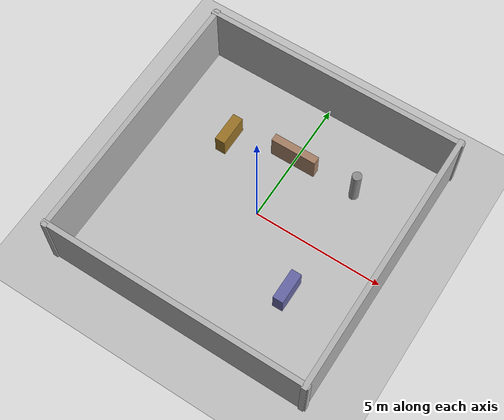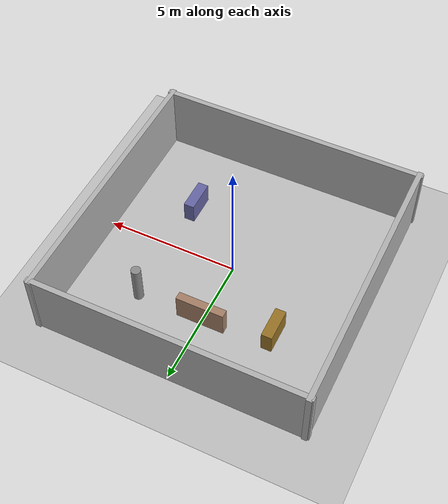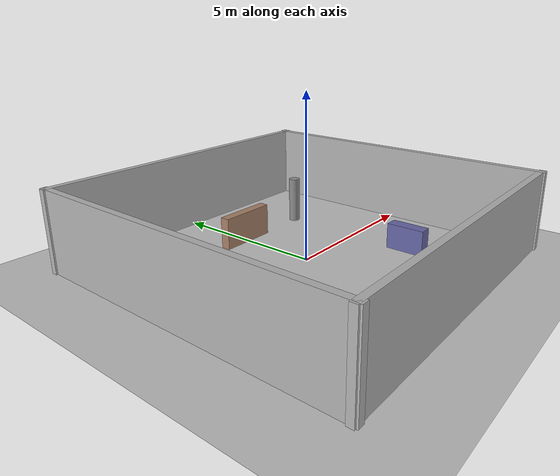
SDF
<?xml version='1.0'?>
<sdf version='1.9'>
  <world name='waver_world'>

    <!--
      System pluginy:
      - Physics: fyzika sveta,
      - UserCommands: runtime prikazy (spawn/delete),
      - SceneBroadcaster: stream sceny do GUI,
      - Imu/Sensors: simulacia senzorov.
    -->
    <plugin filename="gz-sim-physics-system"       name="gz::sim::systems::Physics"/>
    <plugin filename="gz-sim-user-commands-system"  name="gz::sim::systems::UserCommands"/>
    <plugin filename="gz-sim-scene-broadcaster-system" name="gz::sim::systems::SceneBroadcaster"/>
    <plugin filename="gz-sim-imu-system"            name="gz::sim::systems::Imu"/>
    <plugin filename="gz-sim-sensors-system"        name="gz::sim::systems::Sensors">
      <render_engine>ogre2</render_engine>
    </plugin>

    <!--
      Fyzika:
      max_step_size 0.001 => 1 kHz krok.
      real_time_factor 1.0 => ciel je realny cas.
    -->
    <physics name='1ms' type='ignored'>
      <max_step_size>0.001</max_step_size>
      <real_time_factor>1.0</real_time_factor>
      <real_time_update_rate>1000</real_time_update_rate>
    </physics>

    <!--
      Scene + svetla:
      ambient + background ovplyvnuju citatelnost kamery a GUI.
    -->
    <scene>
      <ambient>0.4 0.4 0.4 1</ambient>
      <background>0.7 0.7 0.7 1</background>
      <shadows>true</shadows>
      <grid>false</grid>
    </scene>

    <light name='sun' type='directional'>
      <cast_shadows>true</cast_shadows>
      <pose>0 0 10 0 0 0</pose>
      <diffuse>0.8 0.8 0.8 1</diffuse>
      <specular>0.2 0.2 0.2 1</specular>
      <attenuation>
        <range>1000</range><constant>0.9</constant>
        <linear>0.01</linear><quadratic>0.001</quadratic>
      </attenuation>
      <direction>-0.5 0.1 -0.9</direction>
    </light>

    <light name='overhead' type='point'>
      <pose>0 0 4 0 0 0</pose>
      <diffuse>0.6 0.6 0.6 1</diffuse>
      <specular>0.1 0.1 0.1 1</specular>
      <attenuation>
        <range>20</range><constant>0.3</constant>
        <linear>0.02</linear><quadratic>0.002</quadratic>
      </attenuation>
    </light>

    <!-- Podlaha: velka rovina s trenim. -->
    <model name='ground_plane'>
      <static>true</static>
      <link name='link'>
        <collision name='collision'>
          <geometry><plane><normal>0 0 1</normal><size>30 30</size></plane></geometry>
          <surface>
            <friction><ode><mu>100</mu><mu2>50</mu2></ode></friction>
          </surface>
        </collision>
        <visual name='visual'>
          <cast_shadows>false</cast_shadows>
          <geometry><plane><normal>0 0 1</normal><size>30 30</size></plane></geometry>
          <material>
            <ambient>0.75 0.75 0.75 1</ambient>
            <diffuse>0.75 0.75 0.75 1</diffuse>
          </material>
        </visual>
      </link>
    </model>

    <!--
      Vonkajsie steny miestnosti.
      Ciel: uzavriet mapovaci priestor, aby Nav2/SLAM mali jasne hranice.
    -->
    <model name='walls'>
      <static>true</static>
      <pose>0 0 0 0 0 0</pose>

    <!-- Juzna stena -->
      <link name='wall_south'>
        <pose>0 -5 1.25 0 0 0</pose>
        <collision name='col'><geometry><box><size>10.3 0.2 2.5</size></box></geometry></collision>
        <visual name='vis'>
          <geometry><box><size>10.3 0.2 2.5</size></box></geometry>
          <material><ambient>0.6 0.6 0.6 1</ambient><diffuse>0.7 0.7 0.7 1</diffuse></material>
        </visual>
      </link>

    <!-- Severna stena -->
      <link name='wall_north'>
        <pose>0 5 1.25 0 0 0</pose>
        <collision name='col'><geometry><box><size>10.3 0.2 2.5</size></box></geometry></collision>
        <visual name='vis'>
          <geometry><box><size>10.3 0.2 2.5</size></box></geometry>
          <material><ambient>0.6 0.6 0.6 1</ambient><diffuse>0.7 0.7 0.7 1</diffuse></material>
        </visual>
      </link>

    <!-- Zapadna stena -->
      <link name='wall_west'>
        <pose>-5 0 1.25 0 0 0</pose>
        <collision name='col'><geometry><box><size>0.2 10.3 2.5</size></box></geometry></collision>
        <visual name='vis'>
          <geometry><box><size>0.2 10.3 2.5</size></box></geometry>
          <material><ambient>0.6 0.6 0.6 1</ambient><diffuse>0.7 0.7 0.7 1</diffuse></material>
        </visual>
      </link>

    <!-- Vychodna stena -->
      <link name='wall_east'>
        <pose>5 0 1.25 0 0 0</pose>
        <collision name='col'><geometry><box><size>0.2 10.3 2.5</size></box></geometry></collision>
        <visual name='vis'>
          <geometry><box><size>0.2 10.3 2.5</size></box></geometry>
          <material><ambient>0.6 0.6 0.6 1</ambient><diffuse>0.7 0.7 0.7 1</diffuse></material>
        </visual>
      </link>
    </model>

    <!--
      Vnutorne prekazky:
      vytvaraju realnejsi scenar pre planner + local controller.
    -->

    <!-- Box A: vlavo vpredu -->
    <model name='obstacle_a'>
      <static>true</static>
      <pose>-2.5 2.0 0.4 0 0 0</pose>
      <link name='link'>
        <collision name='col'><geometry><box><size>0.4 1.2 0.8</size></box></geometry></collision>
        <visual name='vis'>
          <geometry><box><size>0.4 1.2 0.8</size></box></geometry>
          <material><ambient>0.5 0.35 0.1 1</ambient><diffuse>0.6 0.45 0.15 1</diffuse></material>
        </visual>
      </link>
    </model>

    <!-- Box B: vpravo vpredu -->
    <model name='obstacle_b'>
      <static>true</static>
      <pose>2.5 -2.0 0.4 0 0 0</pose>
      <link name='link'>
        <collision name='col'><geometry><box><size>0.4 1.2 0.8</size></box></geometry></collision>
        <visual name='vis'>
          <geometry><box><size>0.4 1.2 0.8</size></box></geometry>
          <material><ambient>0.3 0.3 0.55 1</ambient><diffuse>0.4 0.4 0.65 1</diffuse></material>
        </visual>
      </link>
    </model>

    <!-- Segment steny v strede -->
    <model name='obstacle_c'>
      <static>true</static>
      <pose>0.0 2.5 0.5 0 0 0</pose>
      <link name='link'>
        <collision name='col'><geometry><box><size>1.8 0.3 1.0</size></box></geometry></collision>
        <visual name='vis'>
          <geometry><box><size>1.8 0.3 1.0</size></box></geometry>
          <material><ambient>0.55 0.4 0.3 1</ambient><diffuse>0.65 0.5 0.4 1</diffuse></material>
        </visual>
      </link>
    </model>

    <!-- Stlp vpravo vzadu -->
    <model name='obstacle_d'>
      <static>true</static>
      <pose>2.5 2.5 0.75 0 0 0</pose>
      <link name='link'>
        <collision name='col'><geometry><cylinder><radius>0.18</radius><length>1.5</length></cylinder></geometry></collision>
        <visual name='vis'>
          <geometry><cylinder><radius>0.18</radius><length>1.5</length></cylinder></geometry>
          <material><ambient>0.45 0.45 0.45 1</ambient><diffuse>0.55 0.55 0.55 1</diffuse></material>
        </visual>
      </link>
    </model>

  </world>
</sdf>
